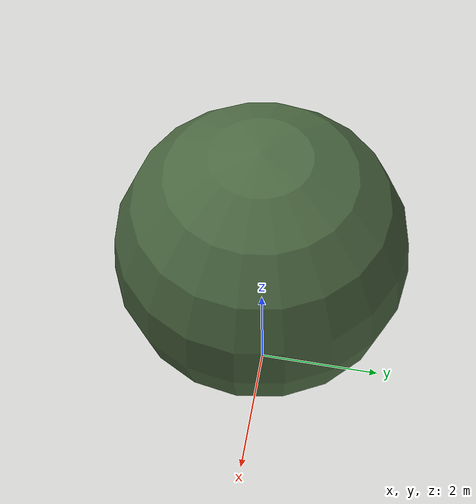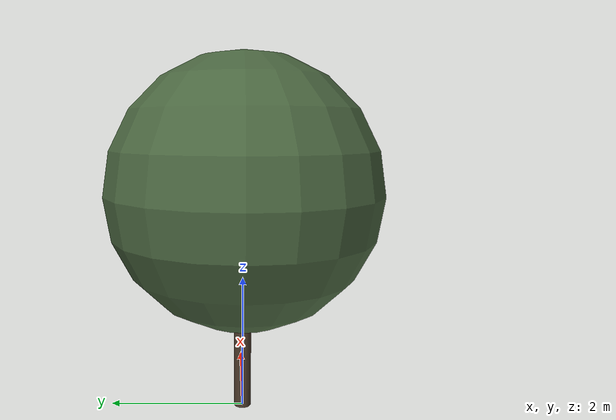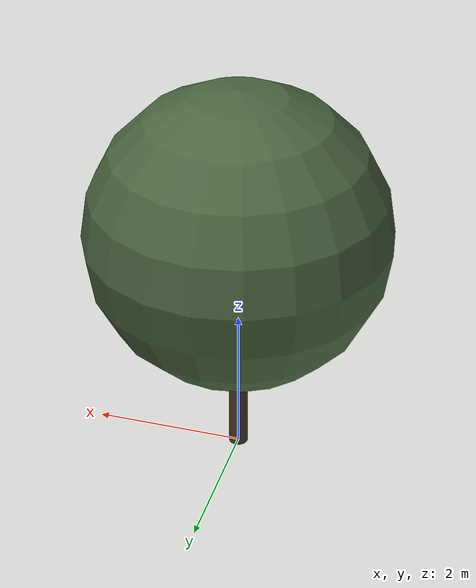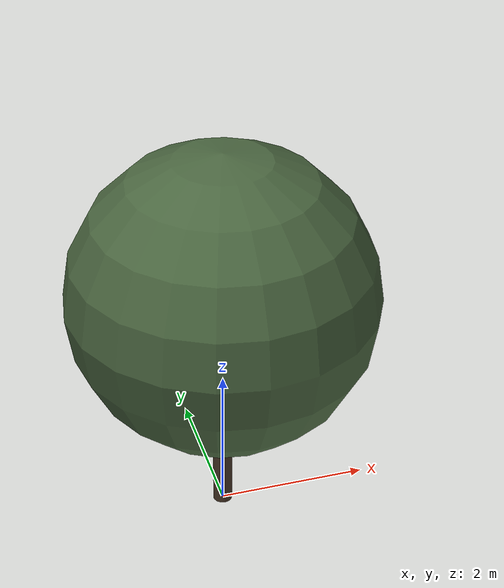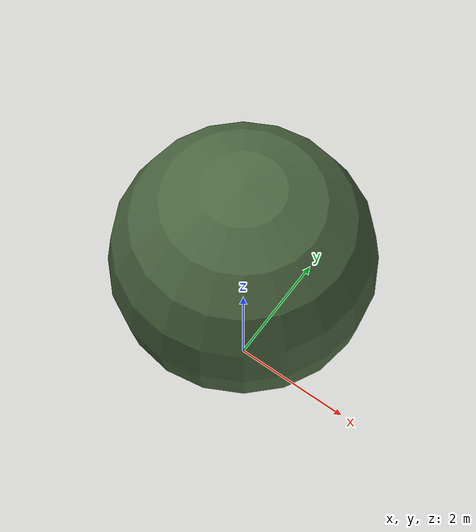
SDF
<?xml version="1.0" ?>
<sdf version="1.10">
  <model name="chene_vert_23">
    <static>true</static>

    <!-- Tronc -->
    <link name="trunk">
      <pose>0 0 1.3346563037261008 0 0 0</pose>
      <visual name="trunk_visual">
        <geometry>
          <cylinder>
            <radius>0.12628834306327497</radius>
            <length>2.6693126074522016</length>
          </cylinder>
        </geometry>
        <material>
          <ambient>0.29 0.22 0.16 1</ambient>
          <diffuse>0.29 0.22 0.16 1</diffuse>
          <specular>0.1 0.1 0.1 1</specular>
        </material>
      </visual>
      <collision name="trunk_collision">
        <geometry>
          <cylinder>
            <radius>0.12628834306327497</radius>
            <length>2.6693126074522016</length>
          </cylinder>
        </geometry>
      </collision>
    </link>

    <!-- Feuillage -->
    <link name="crown">
      <pose>0 0 3.2660306855739156 0 0 0</pose>
      <visual name="crown_visual">
        <geometry>
          <sphere>
              <radius>1.9890602604057135</radius>
            </sphere>
        </geometry>
        <material>
          <ambient>0.29 0.40 0.25 1</ambient>
          <diffuse>0.29 0.40 0.25 1</diffuse>
          <specular>0.1 0.1 0.1 1</specular>
        </material>
      </visual>
      <collision name="crown_collision">
        <geometry>
          <sphere>
            <radius>1.591248208324571</radius>
          </sphere>
        </geometry>
      </collision>
    </link>

    <!-- Joint tronc-feuillage -->
    <joint name="trunk_crown_joint" type="fixed">
      <parent>trunk</parent>
      <child>crown</child>
    </joint>

  </model>
</sdf>
